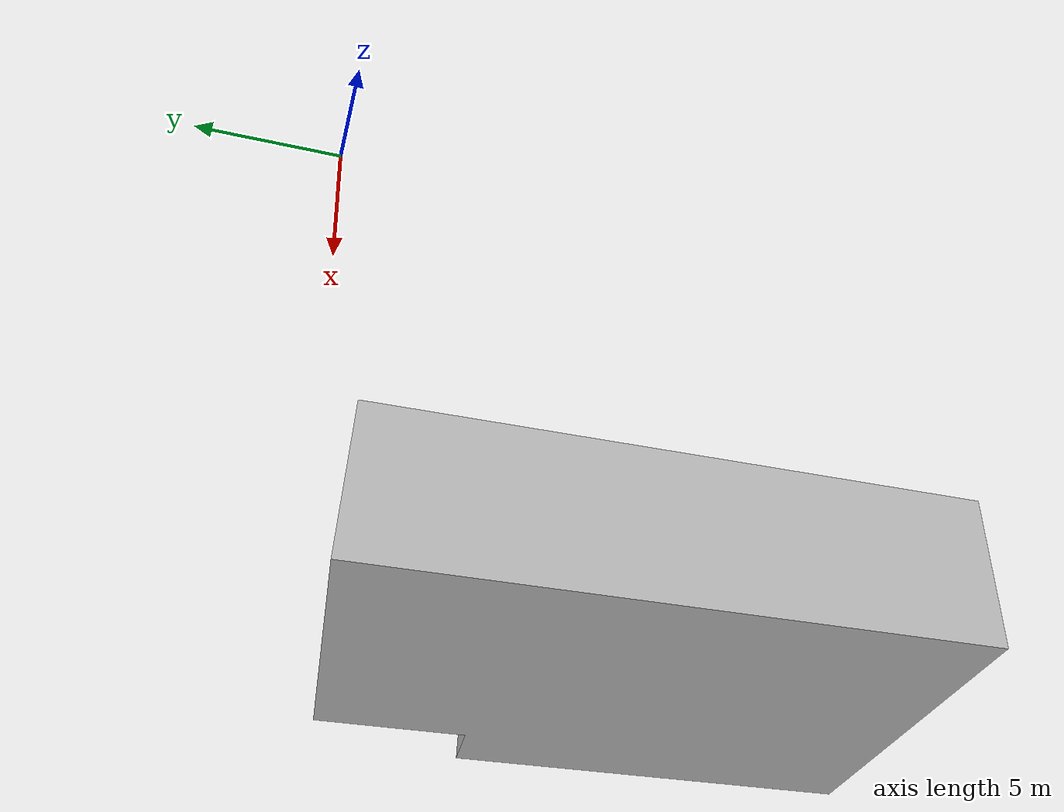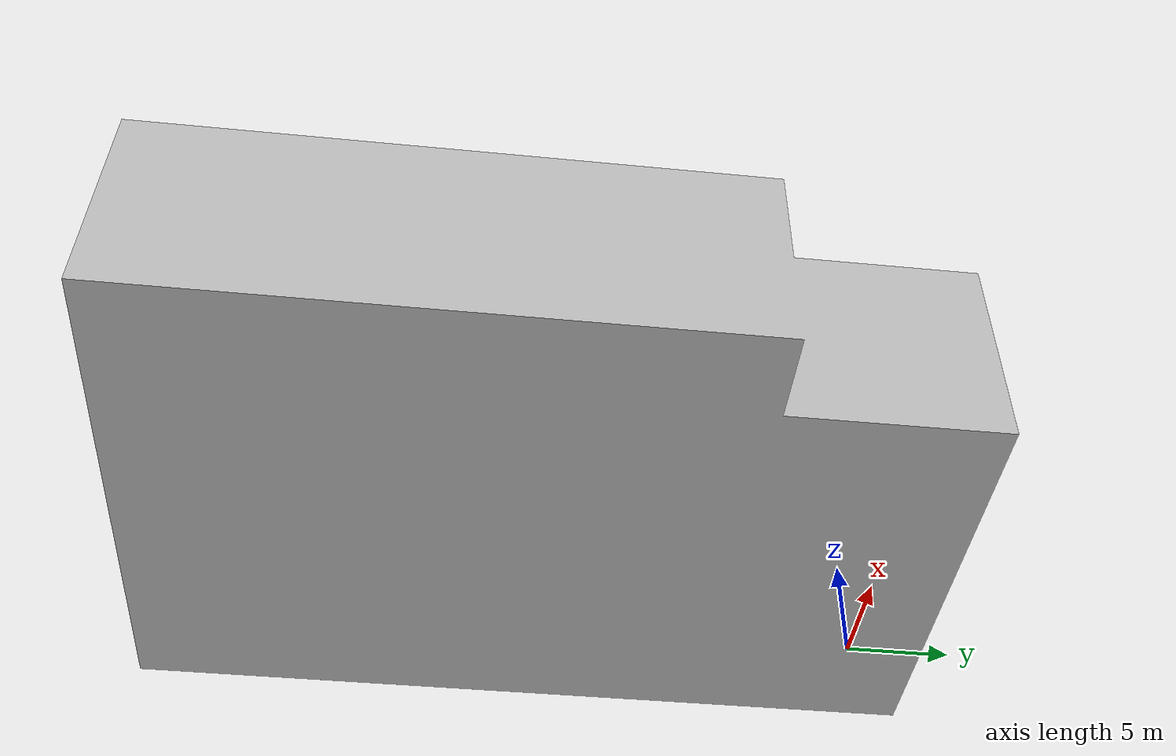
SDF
<?xml version="1.0"?>
<sdf version="1.6">
    <model name="satsop_floor03_tile16">
        <static>true</static>
        <link name="base_link">
            <collision name="collision">
                <pose>0 0 0 0 0 0</pose>
                <geometry>
                    <mesh>
                        <uri>meshes/16.dae</uri>
                        <scale>1.0 1.0 1.0</scale>
                    </mesh>
                </geometry>
            </collision>
            <visual name="visual">
                <geometry>
                    <mesh>
                        <uri>meshes/16.dae</uri>
                    </mesh>
                </geometry>
            </visual>
        </link>
    </model>
</sdf>
